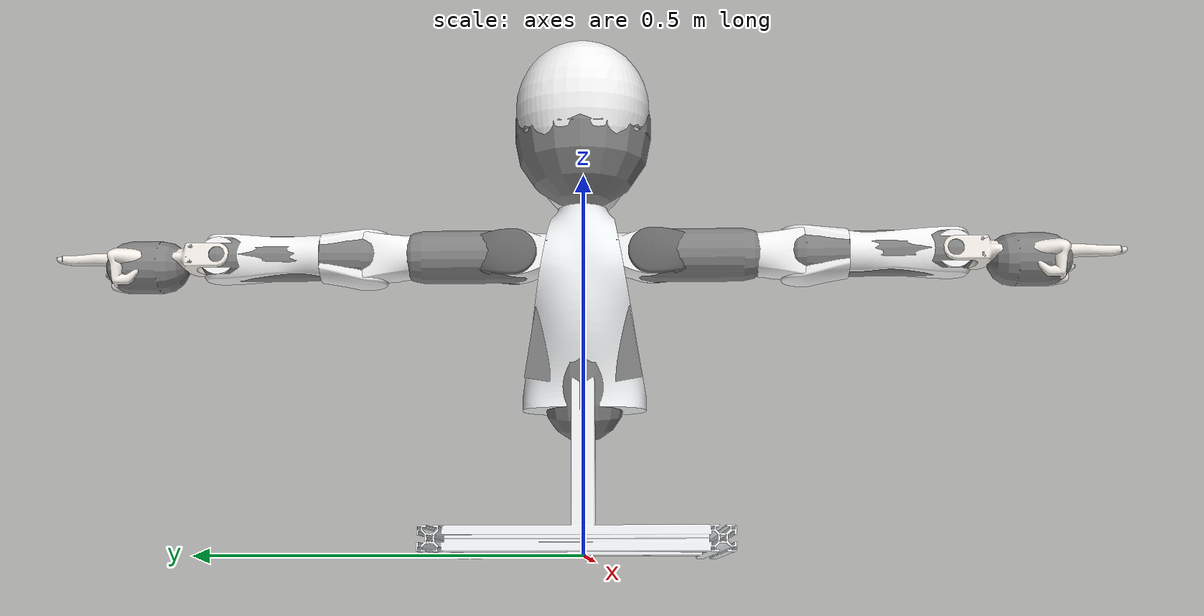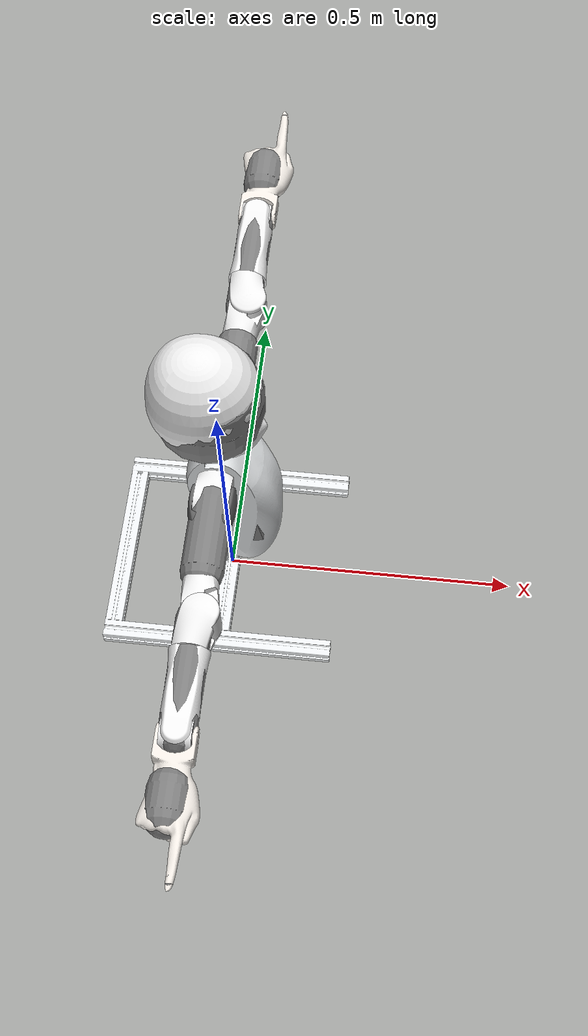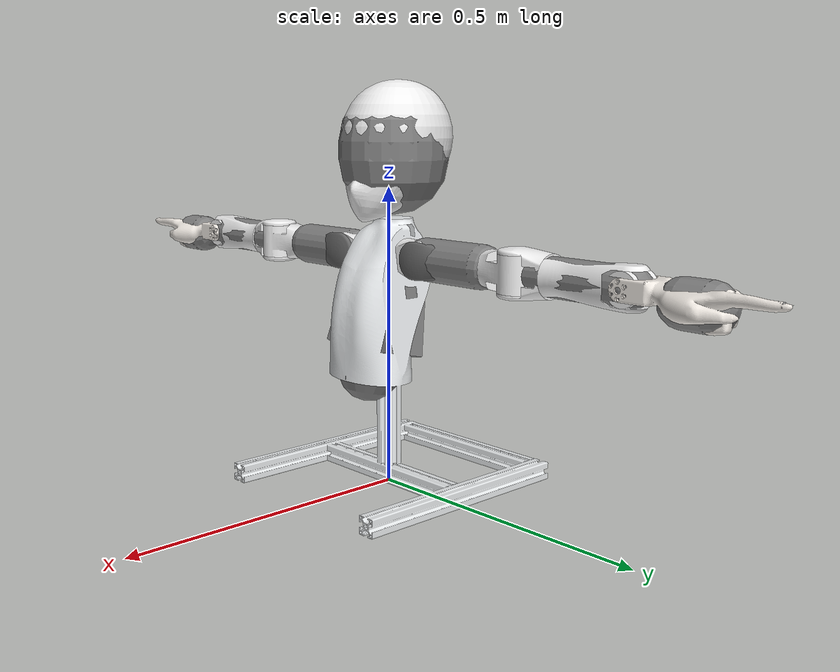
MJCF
<?xml version='1.0' encoding='utf-8'?>
<mujoco model="lite">
  <!-- GENERATED by robot_assets from Onshape CAD. Do not edit by hand. Regenerate: robot-assets-generate lite_dummy -->
  <compiler angle="radian" meshdir="../meshes/visual/" />

  <option timestep="0.001" integrator="implicitfast" solver="Newton" cone="elliptic" impratio="10" /><asset>
    <mesh name="chest_visual" content_type="model/stl" file="chest_visual.stl" />
    <mesh name="left_shoulder_pitch_visual" content_type="model/stl" file="left_shoulder_pitch_visual.stl" />
    <mesh name="left_shoulder_roll_visual" content_type="model/stl" file="left_shoulder_roll_visual.stl" />
    <mesh name="left_shoulder_yaw_visual" content_type="model/stl" file="left_shoulder_yaw_visual.stl" />
    <mesh name="left_elbow_pitch_visual" content_type="model/stl" file="left_elbow_pitch_visual.stl" />
    <mesh name="left_wrist_yaw_visual" content_type="model/stl" file="left_wrist_yaw_visual.stl" />
    <mesh name="left_wrist_roll_visual" content_type="model/stl" file="left_wrist_roll_visual.stl" />
    <mesh name="left_hand_visual" content_type="model/stl" file="left_hand_visual.stl" />
    <mesh name="right_shoulder_pitch_visual" content_type="model/stl" file="right_shoulder_pitch_visual.stl" />
    <mesh name="right_shoulder_roll_visual" content_type="model/stl" file="right_shoulder_roll_visual.stl" />
    <mesh name="right_shoulder_yaw_visual" content_type="model/stl" file="right_shoulder_yaw_visual.stl" />
    <mesh name="right_elbow_pitch_visual" content_type="model/stl" file="right_elbow_pitch_visual.stl" />
    <mesh name="right_wrist_yaw_visual" content_type="model/stl" file="right_wrist_yaw_visual.stl" />
    <mesh name="right_wrist_roll_visual" content_type="model/stl" file="right_wrist_roll_visual.stl" />
    <mesh name="right_hand_visual" content_type="model/stl" file="right_hand_visual.stl" />
    <mesh name="neck_yaw_visual" content_type="model/stl" file="neck_yaw_visual.stl" />
    <mesh name="neck_roll_visual" content_type="model/stl" file="neck_roll_visual.stl" />
    <mesh name="head_visual" content_type="model/stl" file="head_visual.stl" />
  </asset>

  <worldbody>
    <body name="chest">
      <inertial pos="0.0229755 1.89075e-06 0.301247" quat="0.995694 2.09409e-05 -0.0926996 -0.00020815" mass="4.241" diaginertia="0.0300956 0.0293132 0.00962698" />
      <geom size="0.053 0.08" pos="0.025 0 0.28" quat="0.70256 0.0800467 -0.080047 -0.702563" type="capsule" />
      <geom size="0.02 0.04 0.09" pos="0.015 -0.04 0.32" quat="0.706863 0.0185097 -0.140975 -0.692913" type="box" />
      <geom size="0.02 0.04 0.09" pos="0.015 0.04 0.32" quat="0.69291 0.140974 -0.0185102 -0.706866" type="box" />
      <geom pos="0.0229755 1.89075e-06 0.301247" type="mesh" contype="0" conaffinity="0" group="1" density="0" rgba="0.914357 0.926071 0.933099 1" mesh="chest_visual" />
      <body name="left_shoulder_pitch" pos="0 0.09 0.39" quat="0.766046 -0.642786 0 0">
        <inertial pos="-6.27e-10 -0.00168619 -0.00682299" quat="0.696279 -0.123273 0.123273 0.696279" mass="0.375" diaginertia="0.000238351 0.000232695 0.000194679" />
        <joint name="left_shoulder_pitch" pos="0 0 0" axis="0 0 1" range="-3.14159 0.785398" actuatorfrcrange="-17 17" frictionloss="0.1" armature="0.005" />
        <geom pos="-6.27e-10 -0.00168619 -0.00682299" quat="0.766046 0.642786 0 0" type="mesh" contype="0" conaffinity="0" group="1" density="0" rgba="0.933333 0.933333 0.933333 1" mesh="left_shoulder_pitch_visual" />
        <body name="left_shoulder_roll" quat="0.541674 0.454519 0.541677 0.454519">
          <inertial pos="-2.61641e-06 0.0788959 1.66238e-07" quat="0.70711 0.707103 0.000188978 -0.000320556" mass="0.42" diaginertia="0.000535525 0.000505367 0.000205463" />
          <joint name="left_shoulder_roll" pos="0 0 0" axis="0 0 1" range="-1.5708 1.91986" actuatorfrcrange="-14 14" frictionloss="0.1" armature="0.002" />
          <geom pos="-2.61641e-06 0.0788959 1.66238e-07" quat="0.707105 0 -0.707108 0" type="mesh" contype="0" conaffinity="0" group="1" density="0" rgba="0.392063 0.392063 0.392063 1" mesh="left_shoulder_roll_visual" />
          <body name="left_shoulder_yaw" pos="0 0.12 0" quat="0.499998 0.5 -0.5 0.500002">
            <inertial pos="0.00515648 -2.4401e-08 -0.0554418" quat="0.996479 1.06824e-05 -0.0838439 -0.00012696" mass="0.43" diaginertia="0.00050483 0.000501106 0.000213278" />
            <joint name="left_shoulder_yaw" pos="0 0 0" axis="0 0 1" range="-1.5708 1.5708" actuatorfrcrange="-14 14" frictionloss="0.1" armature="0.002" />
            <geom size="0.035 0.06" pos="0 0 0.06" quat="9.38184e-07 -0.707105 -0.707108 9.38187e-07" type="capsule" />
            <geom pos="0.00515648 -2.4401e-08 -0.0554418" quat="0.707105 -0.707108 0 0" type="mesh" contype="0" conaffinity="0" group="1" density="0" rgba="0.933333 0.933333 0.933333 1" mesh="left_shoulder_yaw_visual" />
            <body name="left_elbow_pitch" pos="0.01 0 -0.08" quat="0.707105 -0.707108 0 0">
              <inertial pos="-0.00846207 0.0260402 3.13818e-06" quat="0.988908 0.000309112 5.70736e-05 0.148529" mass="0.11" diaginertia="0.000120399 9.14361e-05 8.0933e-05" />
              <joint name="left_elbow_pitch" pos="0 0 0" axis="0 0 1" range="-2.35619 0" actuatorfrcrange="-14 14" frictionloss="0.1" armature="0.002" />
              <geom pos="-0.00846207 0.0260402 3.13818e-06" type="mesh" contype="0" conaffinity="0" group="1" density="0" rgba="0.933333 0.933333 0.933333 1" mesh="left_elbow_pitch_visual" />
              <body name="left_wrist_yaw" pos="-0.01 0.055 0" quat="0.707105 0.707108 0 0">
                <inertial pos="-2.258e-07 0.000140958 -0.0577988" quat="0.999972 -0.00742817 -3.53484e-07 -4.75856e-05" mass="0.54" diaginertia="0.000826137 0.000817621 0.000268082" />
                <joint name="left_wrist_yaw" pos="0 0 0" axis="0 0 1" range="-1.5708 1.5708" actuatorfrcrange="-5.5 5.5" frictionloss="0.1" armature="0.002" />
                <geom size="0.03 0.095" pos="0 0 -0.04" quat="1.32679e-06 0 0 -1" type="capsule" />
                <geom pos="-2.258e-07 0.000140958 -0.0577988" quat="0.707105 -0.707108 0 0" type="mesh" contype="0" conaffinity="0" group="1" density="0" rgba="0.933333 0.933333 0.933333 1" mesh="left_wrist_yaw_visual" />
                <body name="left_wrist_roll" pos="0 0 -0.135" quat="0.707105 -0.707108 0 0">
                  <inertial pos="3.48e-10 1e-12 -2.12e-10" quat="0.500011 0.499989 0.500011 0.499989" mass="0.25" diaginertia="9.19125e-05 9.04076e-05 7.92687e-05" />
                  <joint name="left_wrist_roll" pos="0 0 0" axis="0 0 1" range="-0.698132 0.698132" actuatorfrcrange="-5.5 5.5" frictionloss="0.1" armature="0.002" />
                  <geom pos="3.48e-10 0 -2.12e-10" quat="1 0 0 0" type="mesh" contype="0" conaffinity="0" group="1" density="0" rgba="0.933333 0.933333 0.933333 1" mesh="left_wrist_roll_visual" />
                  <body name="left_hand" quat="0.707105 0 0.707108 0">
                    <inertial pos="0.0044138 0.1008 0.00606018" quat="0.656957 0.753902 0.0039914 -0.00473008" mass="0.167493" diaginertia="0.000456313 0.000413603 9.23022e-05" />
                    <joint name="left_wrist_pitch" pos="0 0 0" axis="0 0 1" range="-0.785398 0.785398" actuatorfrcrange="-5.5 5.5" frictionloss="0.1" armature="0.002" />
                    <geom size="0.006 0.03" pos="-0.007 0.194 0.0225" quat="0.499998 0.5 0.5 -0.500002" type="capsule" />
                    <geom size="0.035 0.02" pos="0.01 0.1 0.0005" quat="0.499998 0.5 0.5 -0.500002" type="capsule" />
                    <geom pos="0.0044138 0.1008 0.00606018" quat="0.707105 0 -0.707108 0" type="mesh" contype="0" conaffinity="0" group="1" density="0" rgba="0.935303 0.913041 0.886642 1" mesh="left_hand_visual" />
                    <body name="left_finger2_tip" pos="-0.007 0.225 0.0225" quat="0.499998 -0.5 -0.500002 0.5">
                      <inertial pos="0 0 0" mass="1e-09" diaginertia="0 0 0" />
                    </body>
                  </body>
                </body>
              </body>
            </body>
          </body>
        </body>
      </body>
      <body name="right_shoulder_pitch" pos="0 -0.09 0.39" quat="0.642787 -0.766045 0 0">
        <inertial pos="6.27e-10 -0.00168619 0.00682299" quat="0.696279 0.123273 -0.123273 0.696279" mass="0.375" diaginertia="0.000238351 0.000232695 0.000194679" />
        <joint name="right_shoulder_pitch" pos="0 0 0" axis="0 0 1" range="-3.14159 0.785398" actuatorfrcrange="-17 17" frictionloss="0.1" armature="0.005" />
        <geom pos="6.27e-10 -0.00168619 0.00682299" quat="0.642787 0.766045 0 0" type="mesh" contype="0" conaffinity="0" group="1" density="0" rgba="0.933333 0.933333 0.933333 1" mesh="right_shoulder_pitch_visual" />
        <body name="right_shoulder_roll" quat="0.541674 -0.454519 0.541677 -0.454519">
          <inertial pos="4.38085e-05 0.0789688 1.65449e-07" quat="0.70711 0.707102 -0.000965659 -0.000450389" mass="0.42073" diaginertia="0.000536872 0.000507074 0.000205928" />
          <joint name="right_shoulder_roll" pos="0 0 0" axis="0 0 1" range="-1.91986 1.5708" actuatorfrcrange="-14 14" frictionloss="0.1" armature="0.002" />
          <geom pos="4.38085e-05 0.0789688 1.65449e-07" quat="9.38184e-07 0.707105 -9.38187e-07 0.707108" type="mesh" contype="0" conaffinity="0" group="1" density="0" rgba="0.393003 0.393003 0.393003 1" mesh="right_shoulder_roll_visual" />
          <body name="right_shoulder_yaw" pos="0 0.12 0" quat="0.499998 0.5 -0.5 0.500002">
            <inertial pos="0.00515641 2.57303e-07 -0.0554411" quat="0.996479 -1.3598e-05 -0.0838421 4.79531e-05" mass="0.43" diaginertia="0.000504843 0.000501118 0.000213278" />
            <joint name="right_shoulder_yaw" pos="0 0 0" axis="0 0 1" range="-1.5708 1.5708" actuatorfrcrange="-14 14" frictionloss="0.1" armature="0.002" />
            <geom size="0.035 0.06" pos="0 0 0.06" quat="9.38184e-07 -0.707105 -0.707108 9.38187e-07" type="capsule" />
            <geom pos="0.00515641 2.57303e-07 -0.0554411" quat="0.707105 0.707108 0 0" type="mesh" contype="0" conaffinity="0" group="1" density="0" rgba="0.933333 0.933333 0.933333 1" mesh="right_shoulder_yaw_visual" />
            <body name="right_elbow_pitch" pos="0.01 0 -0.08" quat="0.707105 -0.707108 0 0">
              <inertial pos="-0.00846033 0.0260389 8.87366e-07" quat="0.988903 -0.000149387 -9.75622e-05 0.148563" mass="0.11" diaginertia="0.000120407 9.14368e-05 8.0934e-05" />
              <joint name="right_elbow_pitch" pos="0 0 0" axis="0 0 1" range="-2.35619 0" actuatorfrcrange="-14 14" frictionloss="0.1" armature="0.002" />
              <geom pos="-0.00846033 0.0260389 8.87366e-07" quat="1.32679e-06 1 0 0" type="mesh" contype="0" conaffinity="0" group="1" density="0" rgba="0.933333 0.933333 0.933333 1" mesh="right_elbow_pitch_visual" />
              <body name="right_wrist_yaw" pos="-0.01 0.055 0" quat="0.707105 0.707108 0 0">
                <inertial pos="1.36083e-07 0.000140746 -0.0578009" quat="0.999972 -0.0074245 -5.02671e-06 2.15434e-05" mass="0.54" diaginertia="0.000826154 0.000817596 0.000268064" />
                <joint name="right_wrist_yaw" pos="0 0 0" axis="0 0 1" range="-1.5708 1.5708" actuatorfrcrange="-5.5 5.5" frictionloss="0.1" armature="0.002" />
                <geom size="0.03 0.095" pos="0 0 -0.04" quat="1.32679e-06 0 0 -1" type="capsule" />
                <geom pos="1.36083e-07 0.000140746 -0.0578009" quat="0.707105 0.707108 0 0" type="mesh" contype="0" conaffinity="0" group="1" density="0" rgba="0.933333 0.933333 0.933333 1" mesh="right_wrist_yaw_visual" />
                <body name="right_wrist_roll" pos="0 0 -0.135" quat="0.707105 -0.707108 0 0">
                  <inertial pos="4.084e-09 -2e-12 -2.02e-10" quat="0.499585 0.500415 0.499585 0.500415" mass="0.25" diaginertia="9.19094e-05 9.04084e-05 7.92688e-05" />
                  <joint name="right_wrist_roll" pos="0 0 0" axis="0 0 1" range="-0.698132 0.698132" actuatorfrcrange="-5.5 5.5" frictionloss="0.1" armature="0.002" />
                  <geom pos="4.084e-09 -2e-12 -2.02e-10" quat="1.32679e-06 1 0 0" type="mesh" contype="0" conaffinity="0" group="1" density="0" rgba="0.933333 0.933333 0.933333 1" mesh="right_wrist_roll_visual" />
                  <body name="right_hand" quat="0.707105 0 0.707108 0">
                    <inertial pos="-0.00441379 0.100801 0.0060602" quat="0.656957 0.753902 -0.0039883 0.0047276" mass="0.167493" diaginertia="0.000456312 0.000413602 9.23024e-05" />
                    <joint name="right_wrist_pitch" pos="0 0 0" axis="0 0 1" range="-0.785398 0.785398" actuatorfrcrange="-5.5 5.5" frictionloss="0.1" armature="0.002" />
                    <geom size="0.006 0.03" pos="0.007 0.194 0.0225" quat="0.499998 0.5 -0.5 0.500002" type="capsule" />
                    <geom size="0.035 0.02" pos="-0.01 0.1 0.0005" quat="0.499998 0.5 -0.5 0.500002" type="capsule" />
                    <geom pos="-0.00441379 0.100801 0.0060602" quat="9.38184e-07 0.707105 -9.38187e-07 0.707108" type="mesh" contype="0" conaffinity="0" group="1" density="0" rgba="0.935303 0.913041 0.886642 1" mesh="right_hand_visual" />
                    <body name="right_finger2_tip" pos="0.007 0.225 0.0225" quat="0.499998 0.5 0.500002 0.5">
                      <inertial pos="0 0 0" mass="1e-09" diaginertia="0 0 0" />
                    </body>
                  </body>
                </body>
              </body>
            </body>
          </body>
        </body>
      </body>
      <body name="neck_yaw" pos="-0.01 0 0.45">
        <inertial pos="0 0 0.03" quat="0.5 0.5 0.5 0.5" mass="0.0779115" diaginertia="2.40227e-05 2.40227e-05 1.55823e-05" />
        <joint name="neck_yaw" pos="0 0 0" axis="0 0 1" range="-0.785398 0.785398" actuatorfrcrange="-10 10" frictionloss="0.1" armature="0.01" />
        <geom pos="0 0 0.03" quat="1 0 0 0" type="mesh" contype="0" conaffinity="0" group="1" density="0" rgba="0.933333 0.933333 0.933333 1" mesh="neck_yaw_visual" />
        <body name="neck_roll" pos="0 0 0.03" quat="0.499998 0.5 0.500002 0.5">
          <inertial pos="0 0.03 0" quat="0.5 0.5 0.5 0.5" mass="0.0779115" diaginertia="2.40227e-05 2.40227e-05 1.55823e-05" />
          <joint name="neck_roll" pos="0 0 0" axis="0 0 1" range="-0.523599 0.523599" actuatorfrcrange="-10 10" frictionloss="0.1" armature="0.01" />
          <geom pos="0 0.03 0" quat="0.499998 -0.5 -0.5 -0.500002" type="mesh" contype="0" conaffinity="0" group="1" density="0" rgba="0.933333 0.933333 0.933333 1" mesh="neck_roll_visual" />
          <body name="head" pos="0 0.03 0" quat="0.707105 0 0.707108 0">
            <inertial pos="0.00134973 0.0584846 -5.43e-10" quat="0.589743 0.390132 -0.589743 0.390132" mass="4.7098" diaginertia="0.0201095 0.0200477 0.0150257" />
            <joint name="neck_pitch" pos="0 0 0" axis="0 0 1" range="-0.523599 0.523599" actuatorfrcrange="-10 10" frictionloss="0.1" armature="0.01" />
            <geom size="0.09 0.015" pos="0 0.05 0" quat="0.499998 -0.5 -0.5 -0.500002" type="capsule" />
            <geom pos="0.00134973 0.0584846 -5.43e-10" quat="9.38184e-07 9.38187e-07 -0.707108 -0.707105" type="mesh" contype="0" conaffinity="0" group="1" density="0" rgba="0.933333 0.933333 0.933333 1" mesh="head_visual" />
          </body>
        </body>
      </body>
    </body>
  </worldbody>
<actuator><motor name="left_shoulder_pitch" joint="left_shoulder_pitch" forcerange="-17 17" /><motor name="left_shoulder_roll" joint="left_shoulder_roll" forcerange="-14 14" /><motor name="left_shoulder_yaw" joint="left_shoulder_yaw" forcerange="-14 14" /><motor name="left_elbow_pitch" joint="left_elbow_pitch" forcerange="-14 14" /><motor name="left_wrist_yaw" joint="left_wrist_yaw" forcerange="-5.5 5.5" /><motor name="left_wrist_roll" joint="left_wrist_roll" forcerange="-5.5 5.5" /><motor name="left_wrist_pitch" joint="left_wrist_pitch" forcerange="-5.5 5.5" /><motor name="right_shoulder_pitch" joint="right_shoulder_pitch" forcerange="-17 17" /><motor name="right_shoulder_roll" joint="right_shoulder_roll" forcerange="-14 14" /><motor name="right_shoulder_yaw" joint="right_shoulder_yaw" forcerange="-14 14" /><motor name="right_elbow_pitch" joint="right_elbow_pitch" forcerange="-14 14" /><motor name="right_wrist_yaw" joint="right_wrist_yaw" forcerange="-5.5 5.5" /><motor name="right_wrist_roll" joint="right_wrist_roll" forcerange="-5.5 5.5" /><motor name="right_wrist_pitch" joint="right_wrist_pitch" forcerange="-5.5 5.5" /><motor name="neck_yaw" joint="neck_yaw" forcerange="-10 10" /><motor name="neck_roll" joint="neck_roll" forcerange="-10 10" /><motor name="neck_pitch" joint="neck_pitch" forcerange="-10 10" /></actuator></mujoco>
